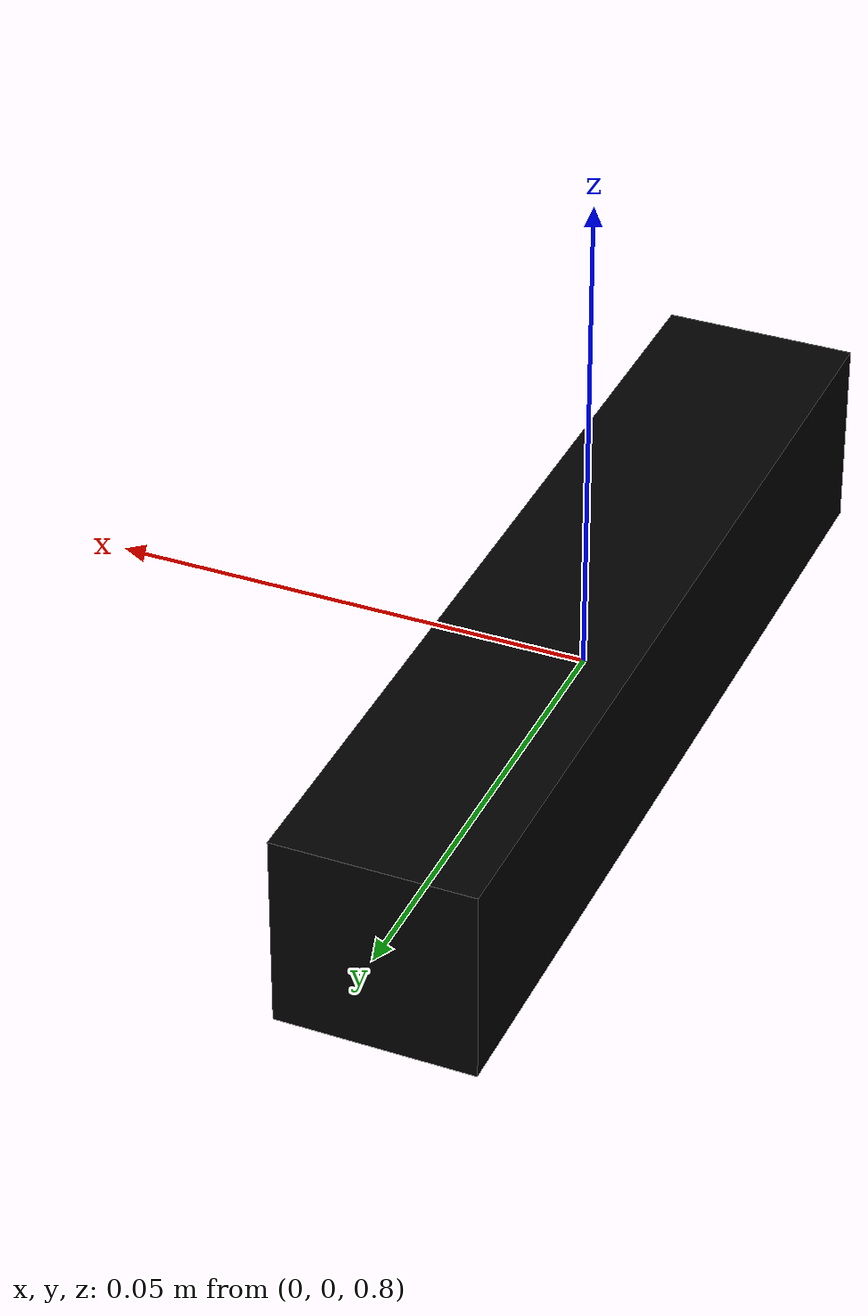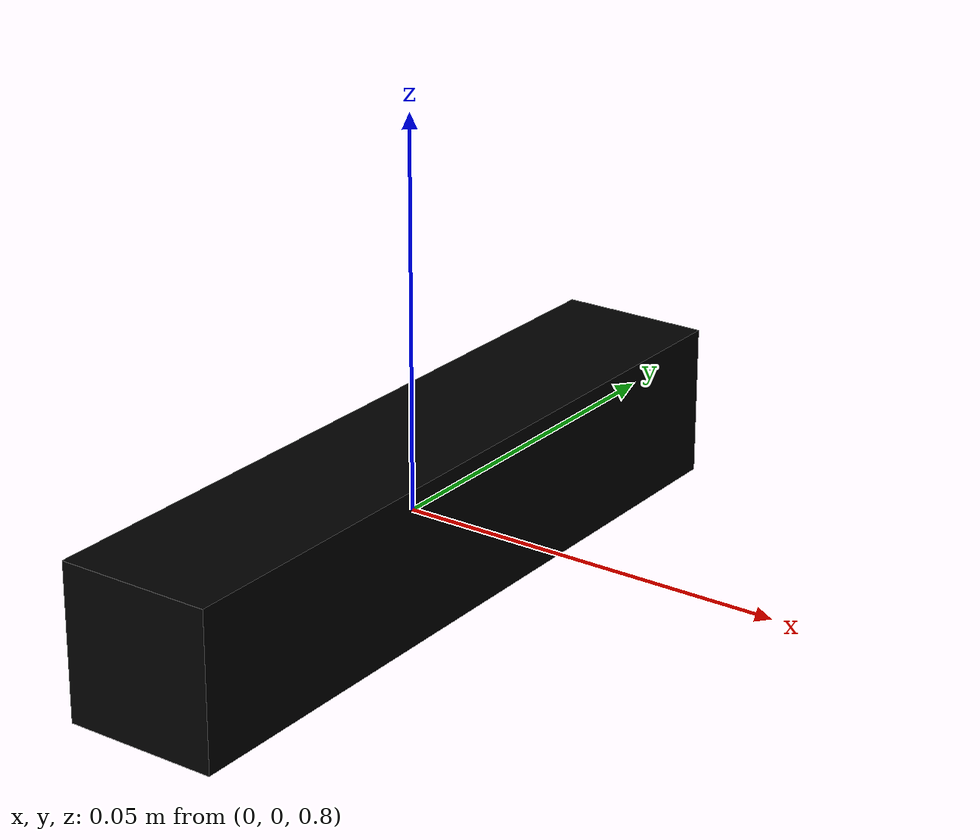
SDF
<?xml version="1.0" ?>
<sdf version="1.6">
  <world name="weight_sorting">

    <!-- Physics settings -->
    <physics type="ode">
      <max_step_size>0.001</max_step_size>
      <real_time_factor>1.0</real_time_factor>
      <real_time_update_rate>1000</real_time_update_rate>
    </physics>

    <!-- Lighting -->
    <include>
      <uri>model://sun</uri>
    </include>

    <!-- Ground plane -->
    <include>
      <uri>model://ground_plane</uri>
    </include>

    <!-- Workspace table -->
    <model name="workspace_table">
      <static>true</static>
      <pose>0 0 0 0 0 0</pose>
      <link name="table_link">
        <visual name="table_surface">
          <pose>0 0 -0.025 0 0 0</pose>
          <geometry>
            <box>
              <size>1.2 1.2 0.05</size>
            </box>
          </geometry>
          <material>
            <ambient>0.8 0.8 0.8 1</ambient>
            <diffuse>0.8 0.8 0.8 1</diffuse>
            <specular>0.1 0.1 0.1 1</specular>
          </material>
        </visual>
        <collision name="table_collision">
          <pose>0 0 -0.025 0 0 0</pose>
          <geometry>
            <box>
              <size>1.2 1.2 0.05</size>
            </box>
          </geometry>
        </collision>
      </link>
    </model>

    <!-- Depth Camera mounted above workspace -->
    <model name="depth_camera">
      <static>true</static>
      <pose>0 0 0.8 0 1.57079632679 0</pose>
      <link name="camera_link">
        <visual name="visual">
          <geometry>
            <box>
              <size>0.02 0.1 0.02</size>
            </box>
          </geometry>
          <material>
            <ambient>0 0 0 1</ambient>
            <diffuse>0 0 0 1</diffuse>
          </material>
        </visual>

        <sensor name="depth_camera_sensor" type="depth">
          <update_rate>10</update_rate>
          <camera>
            <horizontal_fov>1.047</horizontal_fov>
            <image>
              <width>640</width>
              <height>480</height>
              <format>R8G8B8</format>
            </image>
            <clip>
              <near>0.1</near>
              <far>10</far>
            </clip>
            <depth_camera>
              <output>depths</output>
            </depth_camera>
          </camera>

          <plugin name="depth_camera_plugin" filename="libgazebo_ros_camera.so">
            <ros>
              <namespace>/camera</namespace>
              <remapping>depth_camera/image_raw:=image_raw</remapping>
              <remapping>depth_camera/image_raw/camera_info:=camera_info</remapping>
              <remapping>depth_camera/depth/image_raw:=depth/image_raw</remapping>
              <remapping>depth_camera/depth/camera_info:=depth/camera_info</remapping>
              <remapping>depth_camera/points:=pointcloud</remapping>
            </ros>
            <camera_name>depth_camera</camera_name>
            <frame_name>camera_link</frame_name>
            <hack_baseline>0.07</hack_baseline>
            <min_depth>0.1</min_depth>
            <max_depth>10.0</max_depth>
          </plugin>
        </sensor>
      </link>
    </model>

  </world>
</sdf>
